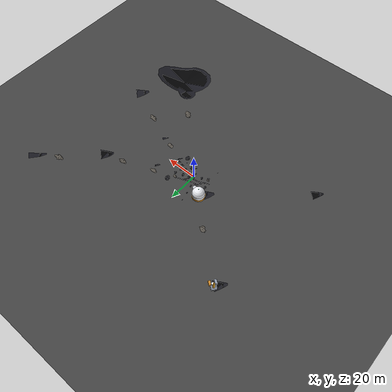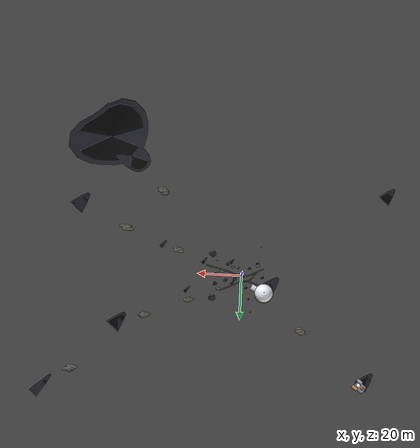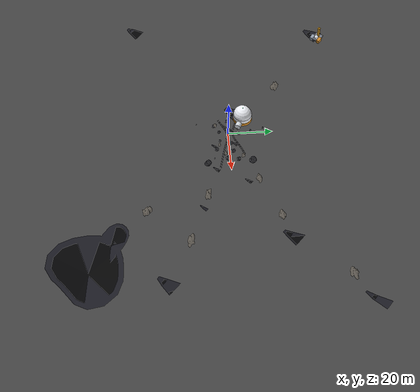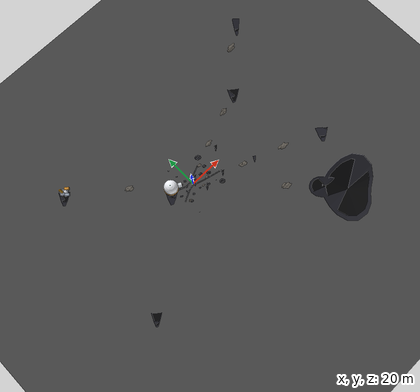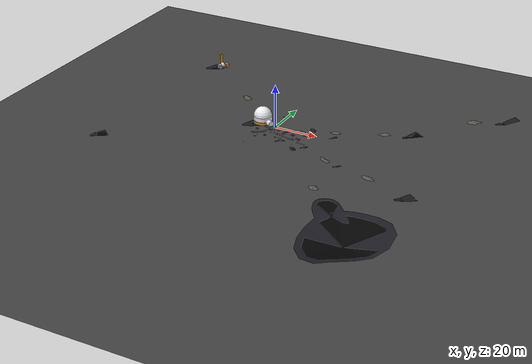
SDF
<sdf version="1.9">
 <world name="lunar_world">
  <model name="lunar_exposed_bedrock">
   <static>true</static>
   <pose>0 0 -2.79 0 0 0</pose>
   <link name="bedrock_link">
    <visual name="exposed_bedrock_visual">
     <cast_shadows>false</cast_shadows>
     <geometry><mesh><uri>file://meshes/lunar_bedrock_patches.obj</uri></mesh></geometry>
     <material>
      <ambient>0.18 0.17 0.16 1</ambient>
      <diffuse>0.36 0.34 0.31 1</diffuse>
      <specular>0.08 0.08 0.07 1</specular>
     </material>
    </visual>
   </link>
  </model>
  <model name="lunar_dangerous_craters">
   <static>true</static>
   <pose>0 0 -2.79 0 0 0</pose>
   <link name="craters_link">
    <visual name="crater_ejecta_rims_visual">
     <cast_shadows>false</cast_shadows>
     <geometry><mesh><uri>file://meshes/lunar_route_crater_rim.obj</uri></mesh></geometry>
     <material>
      <ambient>0.34 0.34 0.36 1</ambient>
      <diffuse>0.60 0.60 0.63 1</diffuse>
      <specular>0.04 0.04 0.04 1</specular>
     </material>
    </visual>
    <visual name="crater_steep_walls_visual">
     <cast_shadows>false</cast_shadows>
     <geometry><mesh><uri>file://meshes/lunar_route_crater_wall.obj</uri></mesh></geometry>
     <material>
      <ambient>0.11 0.11 0.13 1</ambient>
      <diffuse>0.23 0.23 0.25 1</diffuse>
      <specular>0.03 0.03 0.03 1</specular>
     </material>
    </visual>
   </link>
  </model>
  <model name="lunar_south_pole_shadows">
   <static>true</static>
   <pose>0 0 -2.79 0 0 0</pose>
   <link name="shadows_link">
    <visual name="deep_umbra_shadows_visual">
     <cast_shadows>false</cast_shadows>
     <geometry><mesh><uri>file://meshes/lunar_deep_shadows.obj</uri></mesh></geometry>
     <material>
      <ambient>0.005 0.005 0.008 1</ambient>
      <diffuse>0.008 0.008 0.012 1</diffuse>
      <specular>0.0 0.0 0.0 1</specular>
     </material>
    </visual>
    <visual name="penumbra_shadows_visual">
     <cast_shadows>false</cast_shadows>
     <geometry><mesh><uri>file://meshes/lunar_penumbra_shadows.obj</uri></mesh></geometry>
     <material>
      <ambient>0.05 0.05 0.07 1</ambient>
      <diffuse>0.10 0.10 0.13 1</diffuse>
      <specular>0.0 0.0 0.0 1</specular>
     </material>
    </visual>
   </link>
  </model>
  <model name="lunar_habitat_main">
   <static>true</static>
   <pose>-10.50 7.50 -2.772 0 0 -0.45</pose>
   <link name="habitat_body">
    <collision name="body_collision"><geometry><box><size>8.4 8.4 4.5</size></box></geometry></collision>
    <visual name="main_hab_skirt">
     <pose>0 0 0.70 0 0 0</pose>
     <geometry><cylinder><radius>4.35</radius><length>1.40</length></cylinder></geometry>
     <material><ambient>0.58 0.36 0.08 1</ambient><diffuse>0.82 0.54 0.14 1</diffuse></material>
    </visual>
    <visual name="main_hab_cylinder">
     <pose>0 0 2.25 0 0 0</pose>
     <geometry><cylinder><radius>4.20</radius><length>2.20</length></cylinder></geometry>
     <material><ambient>0.76 0.77 0.79 1</ambient><diffuse>0.92 0.93 0.95 1</diffuse></material>
    </visual>
    <visual name="main_hab_dome">
     <pose>0 0 3.25 0 0 0</pose>
     <geometry><sphere><radius>4.15</radius></sphere></geometry>
     <material><ambient>0.78 0.79 0.82 1</ambient><diffuse>0.94 0.95 0.97 1</diffuse></material>
    </visual>
    <visual name="main_hab_tunnel">
     <pose>4.60 0 1.20 0 1.5708 0</pose>
     <geometry><cylinder><radius>1.35</radius><length>3.60</length></cylinder></geometry>
     <material><ambient>0.68 0.70 0.72 1</ambient><diffuse>0.84 0.86 0.88 1</diffuse></material>
    </visual>
    <visual name="hub_beacon">
     <pose>0 0 7.60 0 0 0</pose>
     <geometry><sphere><radius>0.18</radius></sphere></geometry>
     <material>
      <ambient>0.10 0.85 0.45 1</ambient>
      <diffuse>0.15 0.98 0.55 1</diffuse>
      <emissive>0.12 0.88 0.48 1</emissive>
     </material>
    </visual>
   </link>
  </model>
  <model name="lunar_astronaut_1">
   <static>true</static>
   <pose>-8.20 4.20 -2.570 0 0 -0.35</pose>
   <link name="astro1_link">
    <visual name="leg_left">
     <pose>0 0.11 0.42 0 0 0</pose>
     <geometry><cylinder><radius>0.085</radius><length>0.84</length></cylinder></geometry>
     <material><ambient>0.75 0.76 0.78 1</ambient><diffuse>0.88 0.89 0.91 1</diffuse></material>
    </visual>
    <visual name="leg_right">
     <pose>0 -0.11 0.42 0 0 0</pose>
     <geometry><cylinder><radius>0.085</radius><length>0.84</length></cylinder></geometry>
     <material><ambient>0.75 0.76 0.78 1</ambient><diffuse>0.88 0.89 0.91 1</diffuse></material>
    </visual>
    <visual name="torso">
     <pose>0 0 1.08 0 0 0</pose>
     <geometry><box><size>0.32 0.42 0.54</size></box></geometry>
     <material><ambient>0.78 0.79 0.81 1</ambient><diffuse>0.90 0.91 0.93 1</diffuse></material>
    </visual>
    <visual name="plss_backpack">
     <pose>-0.22 0 1.12 0 0 0</pose>
     <geometry><box><size>0.20 0.36 0.52</size></box></geometry>
     <material><ambient>0.70 0.71 0.73 1</ambient><diffuse>0.84 0.85 0.87 1</diffuse></material>
    </visual>
    <visual name="helmet">
     <pose>0 0 1.50 0 0 0</pose>
     <geometry><sphere><radius>0.18</radius></sphere></geometry>
     <material><ambient>0.82 0.83 0.85 1</ambient><diffuse>0.94 0.95 0.97 1</diffuse></material>
    </visual>
    <visual name="gold_visor">
     <pose>0.05 0 1.50 0 0 0</pose>
     <geometry><sphere><radius>0.155</radius></sphere></geometry>
     <material>
      <ambient>0.65 0.48 0.12 1</ambient>
      <diffuse>0.85 0.65 0.16 1</diffuse>
      <specular>0.85 0.75 0.30 1</specular>
     </material>
    </visual>
   </link>
  </model>
  <model name="lunar_mining_site">
   <static>true</static>
   <pose>-56.00 48.00 0.060 0 0 -0.65</pose>
   <link name="mining_link">
    <visual name="rig_skid_base">
     <pose>0 0 0.28 0 0 0</pose>
     <geometry><box><size>4.80 3.60 0.56</size></box></geometry>
     <material><ambient>0.28 0.30 0.33 1</ambient><diffuse>0.46 0.48 0.52 1</diffuse></material>
    </visual>
    <visual name="drill_gantry_tower">
     <pose>-0.90 0 3.10 0 0 0</pose>
     <geometry><box><size>0.95 0.95 5.60</size></box></geometry>
     <material><ambient>0.62 0.44 0.10 1</ambient><diffuse>0.86 0.62 0.14 1</diffuse></material>
    </visual>
    <visual name="core_auger_shaft">
     <pose>-0.90 0 2.20 0 0 0</pose>
     <geometry><cylinder><radius>0.20</radius><length>4.40</length></cylinder></geometry>
     <material><ambient>0.18 0.20 0.22 1</ambient><diffuse>0.32 0.34 0.38 1</diffuse></material>
    </visual>
    <visual name="material_container_1">
     <pose>1.80 1.80 0.85 0 0 0</pose>
     <geometry><box><size>2.60 1.40 1.70</size></box></geometry>
     <material><ambient>0.55 0.36 0.10 1</ambient><diffuse>0.78 0.52 0.16 1</diffuse></material>
    </visual>
    <visual name="material_container_2">
     <pose>1.80 -1.80 0.85 0 0 0</pose>
     <geometry><box><size>2.60 1.40 1.70</size></box></geometry>
     <material><ambient>0.34 0.38 0.42 1</ambient><diffuse>0.56 0.60 0.66 1</diffuse></material>
    </visual>
    <visual name="cryo_tank_1">
     <pose>1.00 0.0 1.35 0 0 0</pose>
     <geometry><sphere><radius>0.95</radius></sphere></geometry>
     <material>
      <ambient>0.78 0.80 0.84 1</ambient>
      <diffuse>0.94 0.95 0.98 1</diffuse>
      <specular>0.5 0.5 0.55 1</specular>
     </material>
    </visual>
    <visual name="mining_beacon">
     <pose>-0.90 0 6.10 0 0 0</pose>
     <geometry><sphere><radius>0.22</radius></sphere></geometry>
     <material>
      <ambient>1.0 0.52 0.08 1</ambient>
      <diffuse>1.0 0.64 0.12 1</diffuse>
      <emissive>0.96 0.54 0.08 1</emissive>
     </material>
    </visual>
   </link>
  </model>
  <model name="lunar_horizon">
   <static>true</static>
   <link name="horizon_link">
    <collision name="horizon_collision">
     <pose>0 0 -12.4 0 0 0</pose>
     <geometry><plane><normal>0 0 1</normal><size>800 800</size></plane></geometry>
    </collision>
    <visual name="horizon_visual">
     <pose>0 0 -12.4 0 0 0</pose>
     <geometry><plane><normal>0 0 1</normal><size>800 800</size></plane></geometry>
     <material>
      <ambient>0.18 0.18 0.18 1</ambient>
      <diffuse>0.26 0.26 0.26 1</diffuse>
      <specular>0.02 0.02 0.02 1</specular>
     </material>
    </visual>
   </link>
  </model>
 </world>
</sdf>
